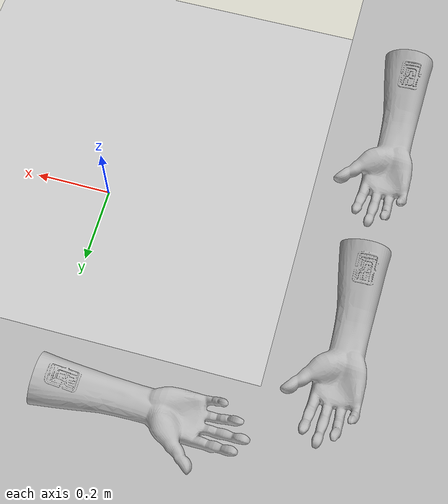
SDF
<sdf version="1.6">
 <world name="default">
  <plugin name="ros_link_attacher_plugin" filename="libgazebo_ros_link_attacher.so"/>
  <light name="sun" type="directional">
   <pose>0 0 10 0 -0 0</pose>
   <diffuse>0.8 0.8 0.8 1</diffuse>
   <specular>0.2 0.2 0.2 1</specular>
   <attenuation>
    <range>1000</range>
    <constant>0.9</constant>
    <linear>0.01</linear>
    <quadratic>0.001</quadratic>
   </attenuation>
   <direction>-0.5 0.1 -0.9</direction>
  </light>
  <model name="ground_plane">
   <static>1</static>
   <link name="link">
    <collision name="collision">
     <geometry><plane><normal>0 0 1</normal><size>100 100</size></plane></geometry>
     <surface>
      <contact><collide_bitmask>65535</collide_bitmask></contact>
      <friction><ode><mu>100</mu><mu2>50</mu2></ode></friction>
     </surface>
    </collision>
    <visual name="visual">
     <cast_shadows>0</cast_shadows>
     <geometry><plane><normal>0 0 1</normal><size>100 100</size></plane></geometry>
     <material>
      <script><uri>file://media/materials/scripts/gazebo.material</uri><name>Gazebo/Grey</name></script>
     </material>
    </visual>
   </link>
  </model>
  <gravity>0 0 -9.8</gravity>
  <magnetic_field>6e-06 2.3e-05 -4.2e-05</magnetic_field>
  <atmosphere type="adiabatic"/>
  <physics name="default_physics" default="0" type="ode">
   <max_step_size>0.001</max_step_size>
   <real_time_factor>1</real_time_factor>
   <real_time_update_rate>1000</real_time_update_rate>
  </physics>
  <scene><ambient>0.4 0.4 0.4 1</ambient><background>0.7 0.7 0.7 1</background><shadows>1</shadows></scene>
  <spherical_coordinates>
   <surface_model>EARTH_WGS84</surface_model>
   <latitude_deg>0</latitude_deg>
   <longitude_deg>0</longitude_deg>
   <elevation>0</elevation>
   <heading_deg>0</heading_deg>
  </spherical_coordinates>
  <light name="user_spot_light_0" type="spot">
   <pose>-1.35795 -0.731789 1 0 -0 0</pose>
   <diffuse>1 1 1 1</diffuse>
   <specular>0.1 0.1 0.1 1</specular>
   <direction>0 0 -1</direction>
   <attenuation>
    <range>20</range>
    <constant>0.5</constant>
    <linear>0.01</linear>
    <quadratic>0.001</quadratic>
   </attenuation>
   <cast_shadows>0</cast_shadows>
   <spot><inner_angle>0.6</inner_angle><outer_angle>6</outer_angle><falloff>1</falloff></spot>
  </light>
  <light name="user_spot_light_1" type="spot">
   <pose>-1.3354 1.27522 1 0 -0 0</pose>
   <diffuse>0.5 0.5 0.5 1</diffuse>
   <specular>0.1 0.1 0.1 1</specular>
   <direction>0 0 -1</direction>
   <attenuation>
    <range>20</range>
    <constant>0.5</constant>
    <linear>0.01</linear>
    <quadratic>0.001</quadratic>
   </attenuation>
   <cast_shadows>0</cast_shadows>
   <spot><inner_angle>0.6</inner_angle><outer_angle>6</outer_angle><falloff>1</falloff></spot>
  </light>
  <light name="user_spot_light_2" type="spot">
   <pose>1.09508 1.37272 1 0 -0 0</pose>
   <diffuse>0.5 0.5 0.5 1</diffuse>
   <specular>0.1 0.1 0.1 1</specular>
   <direction>0 0 -1</direction>
   <attenuation>
    <range>20</range>
    <constant>0.5</constant>
    <linear>0.01</linear>
    <quadratic>0.001</quadratic>
   </attenuation>
   <cast_shadows>0</cast_shadows>
   <spot><inner_angle>0.6</inner_angle><outer_angle>1</outer_angle><falloff>1</falloff></spot>
  </light>
  <model name="Table_1">
   <link name="link_0">
    <inertial>
     <mass>1</mass>
     <inertia>
      <ixx>0.166667</ixx>
      <ixy>0</ixy>
      <ixz>0</ixz>
      <iyy>0.166667</iyy>
      <iyz>0</iyz>
      <izz>0.166667</izz>
     </inertia>
    </inertial>
    <pose>-1e-06 1e-06 0 0 -0 0</pose>
    <visual name="visual">
     <geometry>
      <mesh><uri>/home/kartik/model_editor_models/dae file/Table_1.dae</uri><scale>1 1 1</scale></mesh>
     </geometry>
    </visual>
    <collision name="collision">
     <geometry>
      <mesh><uri>/home/kartik/model_editor_models/dae file/Table_1.dae</uri><scale>1 1 1</scale></mesh>
     </geometry>
     <surface>
      <friction>
       <ode><mu>1</mu><mu2>1</mu2><fdir1>0 0 0</fdir1><slip1>0</slip1><slip2>0</slip2></ode>
       <torsional>
        <coefficient>1</coefficient>
        <patch_radius>0</patch_radius>
        <surface_radius>0</surface_radius>
        <use_patch_radius>1</use_patch_radius>
        <ode><slip>0</slip></ode>
       </torsional>
      </friction>
      <bounce><restitution_coefficient>0</restitution_coefficient><threshold>1e+06</threshold></bounce>
      <contact>
       <collide_without_contact>0</collide_without_contact>
       <collide_without_contact_bitmask>1</collide_without_contact_bitmask>
       <collide_bitmask>1</collide_bitmask>
       <ode>
        <soft_cfm>0</soft_cfm>
        <soft_erp>0.2</soft_erp>
        <kp>1e+13</kp>
        <kd>1</kd>
        <max_vel>0.01</max_vel>
        <min_depth>0</min_depth>
       </ode>
       <bullet>
        <split_impulse>1</split_impulse>
        <split_impulse_penetration_threshold>-0.01</split_impulse_penetration_threshold>
        <soft_cfm>0</soft_cfm>
        <soft_erp>0.2</soft_erp>
        <kp>1e+13</kp>
        <kd>1</kd>
       </bullet>
      </contact>
     </surface>
    </collision>
   </link>
   <static>1</static>
   <pose>-1.5366 1.49983 0 0 -0 0</pose>
  </model>
  <model name="hand_abrasion">
   <link name="link_0">
    <inertial>
     <mass>1</mass>
     <inertia>
      <ixx>0.166667</ixx>
      <ixy>0</ixy>
      <ixz>0</ixz>
      <iyy>0.166667</iyy>
      <iyz>0</iyz>
      <izz>0.166667</izz>
     </inertia>
    </inertial>
    <visual name="visual">
     <geometry>
      <mesh>
       <uri>/home/kartik/model_editor_models/hand_abrasion/meshes/hand_abrasion.dae</uri>
       <scale>1 1 1</scale>
      </mesh>
     </geometry>
    </visual>
    <collision name="collision">
     <geometry>
      <mesh>
       <uri>/home/kartik/model_editor_models/hand_abrasion/meshes/hand_abrasion.dae</uri>
       <scale>1 1 1</scale>
      </mesh>
     </geometry>
     <surface>
      <friction>
       <ode><mu>1</mu><mu2>1</mu2><fdir1>0 0 0</fdir1><slip1>0</slip1><slip2>0</slip2></ode>
       <torsional>
        <coefficient>1</coefficient>
        <patch_radius>0</patch_radius>
        <surface_radius>0</surface_radius>
        <use_patch_radius>1</use_patch_radius>
        <ode><slip>0</slip></ode>
       </torsional>
      </friction>
      <bounce><restitution_coefficient>0</restitution_coefficient><threshold>1e+06</threshold></bounce>
      <contact>
       <collide_without_contact>0</collide_without_contact>
       <collide_without_contact_bitmask>1</collide_without_contact_bitmask>
       <collide_bitmask>1</collide_bitmask>
       <ode>
        <soft_cfm>0</soft_cfm>
        <soft_erp>0.2</soft_erp>
        <kp>1e+13</kp>
        <kd>1</kd>
        <max_vel>0.01</max_vel>
        <min_depth>0</min_depth>
       </ode>
       <bullet>
        <split_impulse>1</split_impulse>
        <split_impulse_penetration_threshold>-0.01</split_impulse_penetration_threshold>
        <soft_cfm>0</soft_cfm>
        <soft_erp>0.2</soft_erp>
        <kp>1e+13</kp>
        <kd>1</kd>
       </bullet>
      </contact>
     </surface>
    </collision>
   </link>
   <static>1</static>
   <pose>-0.311684 0.612581 0.333041 0 -0 1.5597</pose>
  </model>
  <model name="hand_bruise3">
   <link name="link_1">
    <inertial>
     <mass>1</mass>
     <inertia>
      <ixx>0.166667</ixx>
      <ixy>0</ixy>
      <ixz>0</ixz>
      <iyy>0.166667</iyy>
      <iyz>0</iyz>
      <izz>0.166667</izz>
     </inertia>
    </inertial>
    <visual name="visual">
     <geometry>
      <mesh><uri>/home/kartik/model_editor_models/hand_bruise3/hand_bruise3.dae</uri><scale>1 1 1</scale></mesh>
     </geometry>
    </visual>
    <collision name="collision">
     <geometry>
      <mesh><uri>/home/kartik/model_editor_models/hand_bruise3/hand_bruise3.dae</uri><scale>1 1 1</scale></mesh>
     </geometry>
     <surface>
      <friction>
       <ode><mu>1</mu><mu2>1</mu2><fdir1>0 0 0</fdir1><slip1>0</slip1><slip2>0</slip2></ode>
       <torsional>
        <coefficient>1</coefficient>
        <patch_radius>0</patch_radius>
        <surface_radius>0</surface_radius>
        <use_patch_radius>1</use_patch_radius>
        <ode><slip>0</slip></ode>
       </torsional>
      </friction>
      <bounce><restitution_coefficient>0</restitution_coefficient><threshold>1e+06</threshold></bounce>
      <contact>
       <collide_without_contact>0</collide_without_contact>
       <collide_without_contact_bitmask>1</collide_without_contact_bitmask>
       <collide_bitmask>1</collide_bitmask>
       <ode>
        <soft_cfm>0</soft_cfm>
        <soft_erp>0.2</soft_erp>
        <kp>1e+13</kp>
        <kd>1</kd>
        <max_vel>0.01</max_vel>
        <min_depth>0</min_depth>
       </ode>
       <bullet>
        <split_impulse>1</split_impulse>
        <split_impulse_penetration_threshold>-0.01</split_impulse_penetration_threshold>
        <soft_cfm>0</soft_cfm>
        <soft_erp>0.2</soft_erp>
        <kp>1e+13</kp>
        <kd>1</kd>
       </bullet>
      </contact>
     </surface>
    </collision>
   </link>
   <static>1</static>
   <pose>-0.696654 -0.136611 0.333041 0 -0 0</pose>
  </model>
  <model name="hand_burn">
   <link name="link_1">
    <inertial>
     <mass>1</mass>
     <inertia>
      <ixx>0.166667</ixx>
      <ixy>0</ixy>
      <ixz>0</ixz>
      <iyy>0.166667</iyy>
      <iyz>0</iyz>
      <izz>0.166667</izz>
     </inertia>
    </inertial>
    <visual name="visual">
     <geometry>
      <mesh><uri>/home/kartik/model_editor_models/hand_burn/meshes/hand_burn.dae</uri><scale>1 1 1</scale></mesh>
     </geometry>
    </visual>
    <collision name="collision">
     <geometry>
      <mesh><uri>/home/kartik/model_editor_models/hand_burn/meshes/hand_burn.dae</uri><scale>1 1 1</scale></mesh>
     </geometry>
     <surface>
      <friction>
       <ode><mu>1</mu><mu2>1</mu2><fdir1>0 0 0</fdir1><slip1>0</slip1><slip2>0</slip2></ode>
       <torsional>
        <coefficient>1</coefficient>
        <patch_radius>0</patch_radius>
        <surface_radius>0</surface_radius>
        <use_patch_radius>1</use_patch_radius>
        <ode><slip>0</slip></ode>
       </torsional>
      </friction>
      <bounce><restitution_coefficient>0</restitution_coefficient><threshold>1e+06</threshold></bounce>
      <contact>
       <collide_without_contact>0</collide_without_contact>
       <collide_without_contact_bitmask>1</collide_without_contact_bitmask>
       <collide_bitmask>1</collide_bitmask>
       <ode>
        <soft_cfm>0</soft_cfm>
        <soft_erp>0.2</soft_erp>
        <kp>1e+13</kp>
        <kd>1</kd>
        <max_vel>0.01</max_vel>
        <min_depth>0</min_depth>
       </ode>
       <bullet>
        <split_impulse>1</split_impulse>
        <split_impulse_penetration_threshold>-0.01</split_impulse_penetration_threshold>
        <soft_cfm>0</soft_cfm>
        <soft_erp>0.2</soft_erp>
        <kp>1e+13</kp>
        <kd>1</kd>
       </bullet>
      </contact>
     </surface>
    </collision>
   </link>
   <static>1</static>
   <pose>-0.697754 0.3804 0.333041 0 -0 0</pose>
  </model>
 </world>
</sdf>
